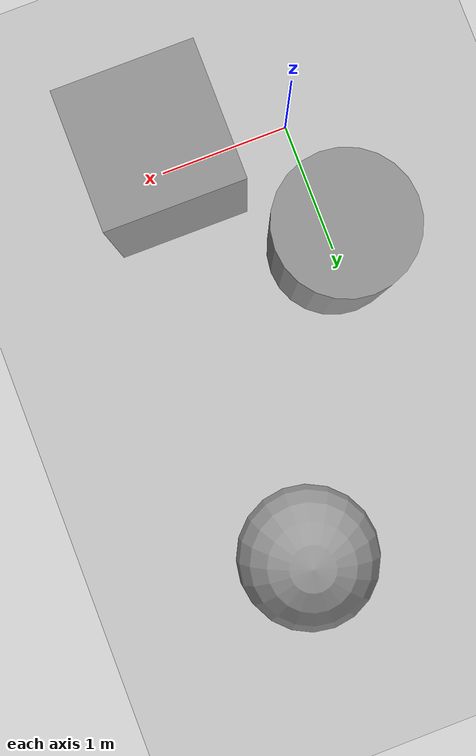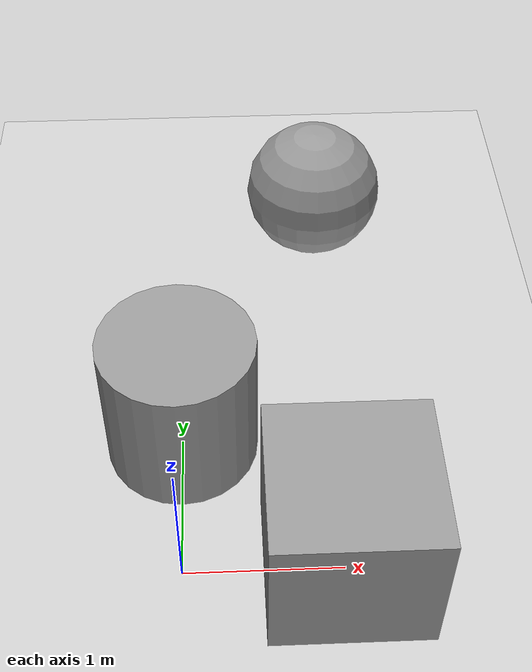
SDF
<?xml version="1.0" ?>
<sdf version="1.5">
  <world name="default">
    <scene>
      <ambient>0.7 0.7 0.7 1</ambient>
      <background>0.1 0.1 0.1 1</background>
      <shadows>false</shadows>
    </scene>

    <light name='point_light_0' type='point'>
      <pose frame=''>0 0 3 0 0 0</pose>
      <diffuse>0.1 0.1 0.1 1</diffuse>
      <specular>0.02 0.02 0.02 1</specular>
      <attenuation>
        <range>20</range>
        <constant>0.5</constant>
        <linear>0.01</linear>
        <quadratic>0.001</quadratic>
      </attenuation>
      <cast_shadows>0</cast_shadows>
      <direction>0 0 -1</direction>
    </light>
    <light name='point_light_1' type='point'>
      <pose frame=''>4 0 3 0 0 0</pose>
      <diffuse>0.1 0.1 0.1 1</diffuse>
      <specular>0.02 0.02 0.02 1</specular>
      <attenuation>
        <range>20</range>
        <constant>0.5</constant>
        <linear>0.01</linear>
        <quadratic>0.001</quadratic>
      </attenuation>
      <cast_shadows>0</cast_shadows>
      <direction>0 0 -1</direction>
    </light>
    <light name='point_light_2' type='point'>
      <pose frame=''>0 4 3 0 0 0</pose>
      <diffuse>0.1 0.1 0.1 1</diffuse>
      <specular>0.02 0.02 0.02 1</specular>
      <attenuation>
        <range>20</range>
        <constant>0.5</constant>
        <linear>0.01</linear>
        <quadratic>0.001</quadratic>
      </attenuation>
      <cast_shadows>0</cast_shadows>
      <direction>0 0 -1</direction>
    </light>
    <light name='point_light_3' type='point'>
      <pose frame=''>4 4 3 0 0 0</pose>
      <diffuse>0.1 0.1 0.1 1</diffuse>
      <specular>0.02 0.02 0.02 1</specular>
      <attenuation>
        <range>20</range>
        <constant>0.5</constant>
        <linear>0.01</linear>
        <quadratic>0.001</quadratic>
      </attenuation>
      <cast_shadows>0</cast_shadows>
      <direction>0 0 -1</direction>
    </light>

    <include>
      <uri>model://ground_plane</uri>
    </include>

    <model name='unit_box'>
      <pose>1 0 0.5 0 -0 0</pose>
      <link name='link'>
        <inertial>
          <mass>1</mass>
          <inertia>
            <ixx>0.166667</ixx>
            <ixy>0</ixy>
            <ixz>0</ixz>
            <iyy>0.166667</iyy>
            <iyz>0</iyz>
            <izz>0.166667</izz>
          </inertia>
          <pose>0 0 0 0 -0 0</pose>
        </inertial>
        <collision name='collision'>
          <geometry>
            <box>
              <size>1 1 1</size>
            </box>
          </geometry>
          <max_contacts>10</max_contacts>
          <surface>
            <contact>
              <ode/>
            </contact>
            <bounce/>
            <friction>
              <torsional>
                <ode/>
              </torsional>
              <ode/>
            </friction>
          </surface>
        </collision>
        <visual name='visual'>
          <geometry>
            <box>
              <size>1 1 1</size>
            </box>
          </geometry>
          <material>
            <script>
              <name>Gazebo/Grey</name>
              <uri>file://media/materials/scripts/gazebo.material</uri>
            </script>
          </material>
        </visual>
        <self_collide>0</self_collide>
        <enable_wind>0</enable_wind>
        <kinematic>0</kinematic>
      </link>
    </model>
    <model name='unit_sphere'>
      <pose>1 3 0.5 0 -0 0</pose>
      <link name='link'>
        <inertial>
          <mass>1</mass>
          <inertia>
            <ixx>0.1</ixx>
            <ixy>0</ixy>
            <ixz>0</ixz>
            <iyy>0.1</iyy>
            <iyz>0</iyz>
            <izz>0.1</izz>
          </inertia>
          <pose>0 0 0 0 -0 0</pose>
        </inertial>
        <collision name='collision'>
          <geometry>
            <sphere>
              <radius>0.5</radius>
            </sphere>
          </geometry>
          <max_contacts>10</max_contacts>
          <surface>
            <contact>
              <ode/>
            </contact>
            <bounce/>
            <friction>
              <torsional>
                <ode/>
              </torsional>
              <ode/>
            </friction>
          </surface>
        </collision>
        <visual name='visual'>
          <geometry>
            <sphere>
              <radius>0.5</radius>
            </sphere>
          </geometry>
          <material>
            <script>
              <name>Gazebo/Grey</name>
              <uri>file://media/materials/scripts/gazebo.material</uri>
            </script>
          </material>
        </visual>
        <self_collide>0</self_collide>
        <enable_wind>0</enable_wind>
        <kinematic>0</kinematic>
      </link>
    </model>
    <model name='unit_cylinder'>
      <pose>0 1 0.5 0 -0 0</pose>
      <link name='link'>
        <inertial>
          <mass>1</mass>
          <inertia>
            <ixx>0.145833</ixx>
            <ixy>0</ixy>
            <ixz>0</ixz>
            <iyy>0.145833</iyy>
            <iyz>0</iyz>
            <izz>0.125</izz>
          </inertia>
          <pose>0 0 0 0 -0 0</pose>
        </inertial>
        <collision name='collision'>
          <geometry>
            <cylinder>
              <radius>0.5</radius>
              <length>1</length>
            </cylinder>
          </geometry>
          <max_contacts>10</max_contacts>
          <surface>
            <contact>
              <ode/>
            </contact>
            <bounce/>
            <friction>
              <torsional>
                <ode/>
              </torsional>
              <ode/>
            </friction>
          </surface>
        </collision>
        <visual name='visual'>
          <geometry>
            <cylinder>
              <radius>0.5</radius>
              <length>1</length>
            </cylinder>
          </geometry>
          <material>
            <script>
              <name>Gazebo/Grey</name>
              <uri>file://media/materials/scripts/gazebo.material</uri>
            </script>
          </material>
        </visual>
        <self_collide>0</self_collide>
        <enable_wind>0</enable_wind>
        <kinematic>0</kinematic>
      </link>
    </model>
  </world>
</sdf>
